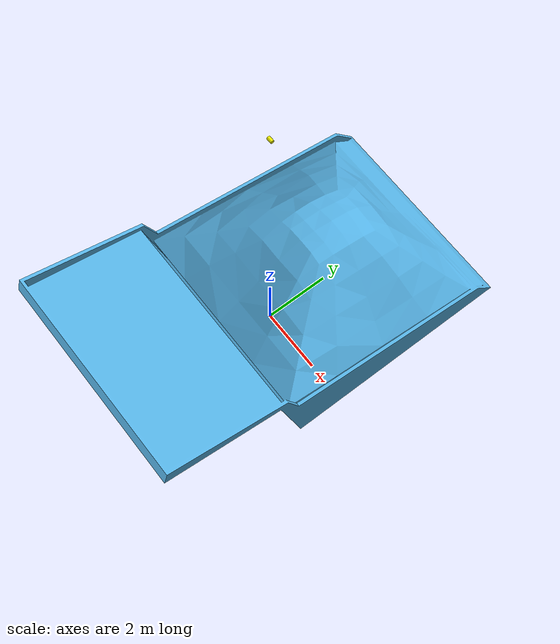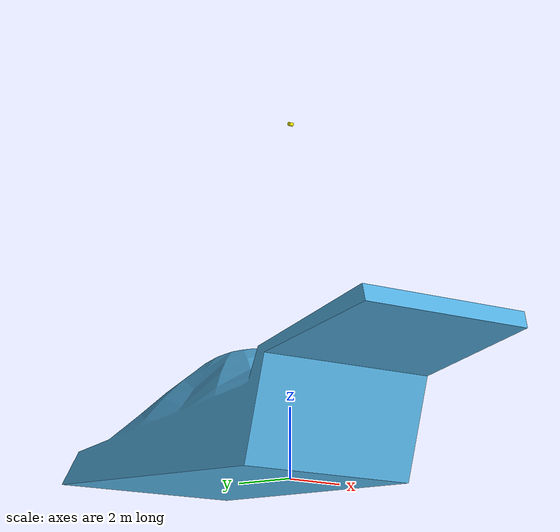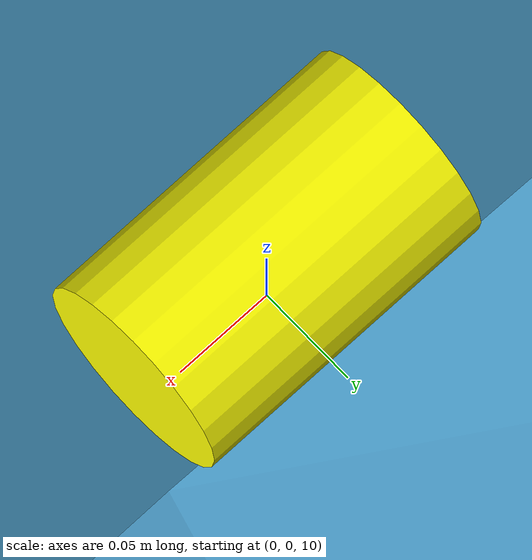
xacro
<?xml version="1.0"?>
<robot name="mp_700" xmlns:xacro="http://ros.org/wiki/xacro">

<!--========================================== Constants ============================================-->

    <xacro:property name="M_PI"   value="3.14159265359" />

<!--========================================== Materials ============================================-->

<material name="Neobotix/Black">
    <color rgba="0.0 0.0 0.0 1.0"/>
</material>

<material name="Neobotix/Blue">
    <color rgba="0.0 0.0 0.8 1.0"/>
</material>

<material name="Neobotix/Green">
    <color rgba="0.0 0.8 0.0 1.0"/>
</material>

<material name="Neobotix/Grey">
    <color rgba="0.7 0.7 0.7 1.0"/>
</material>

<material name="Neobotix/Grey2">
    <color rgba="0.9 0.9 0.9 1.0"/>
</material>

<material name="Neobotix/Red">
    <color rgba="0.8 0.0 0.0 1.0"/>
</material>

<material name="Neobotix/White">
    <color rgba="1.0 1.0 1.0 1.0"/>
</material>

<material name="Neobotix/Yellow">
    <color rgba="1.0 1.0 0 1"/>
</material>

<material name="Neobotix/Aluminum">
    <color rgba="0.5 0.5 0.5 1"/>
</material>

<!--==================================== Gazebo Link References =====================================-->

<gazebo reference="base_link">
    <gravity>true</gravity>
    <self_collide>false</self_collide>
    <material value="Gazebo/Grey"/>
</gazebo>

<gazebo reference="base_footprint">
    <gravity>true</gravity>
    <self_collide>false</self_collide>
    <material value="Gazebo/Grey"/>
</gazebo>

<!--========================================= Base Macro ============================================-->

<!--The root link base_link has an inertia specified in the URDF,
    but KDL does not support a root link with an inertia. As a
    workaround, you can add an extra base_footprint link to your URDF. -->
<link name="base_footprint" />

<link name="base_link">
    <visual>
        <geometry>
          <mesh filename="package://working/models/Truck/180tonnes_v4.dae"/>
        </geometry>
        <origin xyz="0 0 0" rpy="0 0 0" />
    </visual>
    <collision>
        <geometry>
          <mesh filename="package://working/models/Truck/180tonnes_v4.dae"/>
        </geometry>
        <origin xyz="0 0 0" rpy="0 0 0" />
    </collision>
    <inertial>
        <mass value="50" />
        <origin xyz="0 0 0" rpy="0 0 0"/>
        <inertia ixx="4" ixy="0.00" ixz="0.00"
                 iyx="0.00" iyy="8" iyz="0.00"
                 izx="0.00" izy="0.00" izz="5"/>
    </inertial>
    <static> true </static>
</link>

<joint name="base_footprint_joint" type="fixed">
   <parent link="base_footprint"/>
   <child  link="base_link"/>
   <origin xyz="0 0 0" rpy="0 0 0"/>
</joint>

<!--================================ Gazebo Sick Laser References ===================================-->

<gazebo reference="3d_lidar">
    <material value="Gazebo/Yellow"/>
    <sensor name="3d_lidar_sensor" type="ray">
        <pose>0 0 0 0 0 0</pose>
        <visualize>false</visualize>
        <update_rate>10</update_rate>
        <ray>
            <scan>
                <horizontal>
                    <samples>1024</samples>
                    <resolution>0.17</resolution>
                    <min_angle>-1.57</min_angle>
                    <max_angle>1.57</max_angle>
                </horizontal>
                <vertical>
                    <samples>128</samples>
                    <resolution>0.35</resolution>
                    <min_angle>-0.39</min_angle>
                    <max_angle>0.39</max_angle>
                </vertical>
            </scan>
            <range>
                <min>0.10</min>
                <max>30.0</max>
                <resolution>0.01</resolution>
            </range>
            <noise>
                <type>gaussian</type>
                <mean>0.0</mean>
                <stddev>0.01</stddev>
            </noise>
        </ray>
        <plugin name="gazebo_ros_laser_controller" filename="libgazebo_ros_velodyne_laser.so">
            <topicName>lidar3D/scan</topicName>
            <frameName>3d_lidar</frameName>
            <organize_cloud>false</organize_cloud>
            <min_range>0.10</min_range>
            <max_range>30.0</max_range>
            <gaussianNoise>0.008</gaussianNoise>
          </plugin>
    </sensor>
</gazebo>

<joint name="3d_lidar_joint" type="fixed">
    <axis xyz="0 1 0"/>
    <origin rpy="0 ${M_PI/2} 0" xyz="0 0 10"/>
    <parent link="base_footprint"/>
    <child link="3d_lidar"/>
</joint>

<link name="3d_lidar" type="laser">
    <inertial>
        <mass value="0.001"/>
        <origin rpy="0 0 0" xyz="0 0 0"/>
        <inertia ixx="0.0001" ixy="0" ixz="0" iyy="0.000001" iyz="0" izz="0.0001"/>
    </inertial>
    <visual>
        <origin rpy="0 0 0" xyz="-0.05 0 0"/>
        <geometry>
            <cylinder length="0.154" radius="0.05"/>
        </geometry>
        <material name="Neobotix/Yellow"/>
    </visual>
    <collision>
        <origin rpy="0 0 0" xyz="-0.05 0 0"/>
        <geometry>
            <cylinder length="0.15" radius="0.05"/>
        </geometry>
    </collision>
</link>

</robot>
